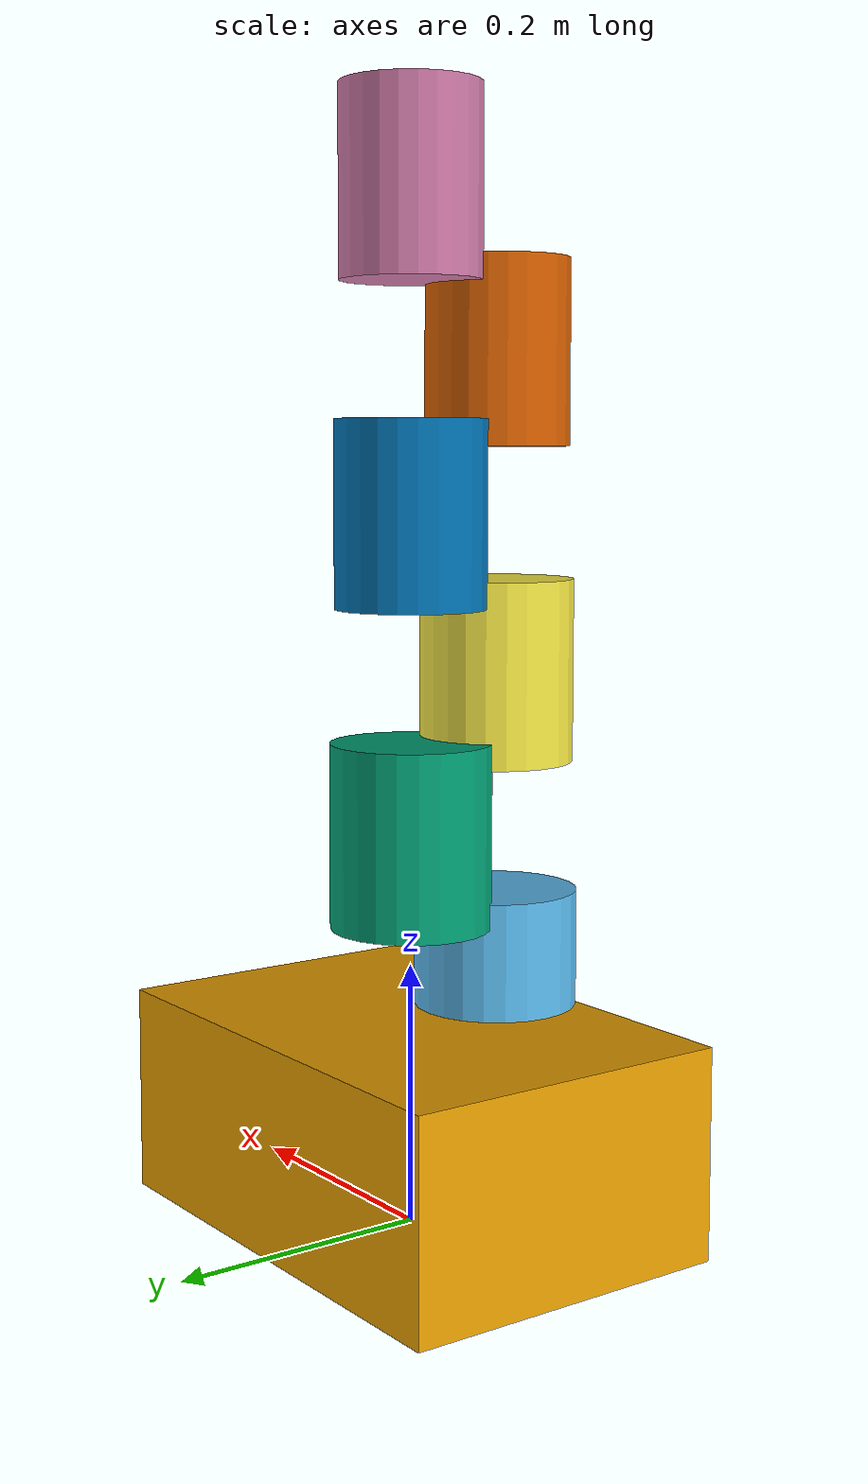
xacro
<?xml version="1.0" encoding="utf-8"?>
<!-- 现实基准原件: uuv_simulator (uuv_descriptions/urdf/common.urdf.xacro)                                          -->
<!-- 机型描述: UUV Simulator 工业水下机器人与深海防喷器阀门台（RexROV / 海底传感器 / BOP Panel）                                                                   -->
<!-- 运动学拓扑统计: 2 连杆 / 0 关节                                                    -->
<robot name="uuv_simulator">
  <link name="base_link">
    <inertial>
      <origin xyz="0 0 0.08" rpy="0 0 0"/>
      <mass value="16.40"/>
      <inertia ixx="0.185" ixy="0.0" ixz="0.0" iyy="0.240" iyz="0.0" izz="0.295"/>
    </inertial>
    <visual>
      <origin xyz="0 0 0.08" rpy="0 0 0"/>
      <geometry><box size="0.38 0.26 0.16"/></geometry>
    </visual>
    <collision>
      <origin xyz="0 0 0.08" rpy="0 0 0"/>
      <geometry><box size="0.38 0.26 0.16"/></geometry>
    </collision>
  </link>

  <link name="link_1">
    <inertial>
      <origin xyz="0 0 0.06" rpy="0 0 0"/>
      <mass value="3.200"/>
      <inertia ixx="0.014" ixy="0.0" ixz="0.0" iyy="0.014" iyz="0.0" izz="0.008"/>
    </inertial>
    <visual>
      <origin xyz="0 0 0.06" rpy="0 0 0"/>
      <geometry><cylinder radius="0.063" length="0.14"/></geometry>
    </visual>
  </link>
  <joint name="joint_1" type="revolute">
    <parent link="base_link"/>
    <child link="link_1"/>
    <origin xyz="0 -0.080 0.12" rpy="0 0 0"/>
    <axis xyz="1 0 0"/>
    <limit lower="-2.7925" upper="2.7925" effort="85.0" velocity="6.28"/>
  </joint>

  <link name="link_2">
    <inertial>
      <origin xyz="0 0 0.06" rpy="0 0 0"/>
      <mass value="2.263"/>
      <inertia ixx="0.014" ixy="0.0" ixz="0.0" iyy="0.014" iyz="0.0" izz="0.008"/>
    </inertial>
    <visual>
      <origin xyz="0 0 0.06" rpy="0 0 0"/>
      <geometry><cylinder radius="0.061" length="0.14"/></geometry>
    </visual>
  </link>
  <joint name="joint_2" type="revolute">
    <parent link="link_1"/>
    <child link="link_2"/>
    <origin xyz="0 0.080 0.12" rpy="0 0 0"/>
    <axis xyz="0 1 0"/>
    <limit lower="-2.7925" upper="2.7925" effort="85.0" velocity="6.28"/>
  </joint>

  <link name="link_3">
    <inertial>
      <origin xyz="0 0 0.06" rpy="0 0 0"/>
      <mass value="1.848"/>
      <inertia ixx="0.014" ixy="0.0" ixz="0.0" iyy="0.014" iyz="0.0" izz="0.008"/>
    </inertial>
    <visual>
      <origin xyz="0 0 0.06" rpy="0 0 0"/>
      <geometry><cylinder radius="0.059" length="0.14"/></geometry>
    </visual>
  </link>
  <joint name="joint_3" type="revolute">
    <parent link="link_2"/>
    <child link="link_3"/>
    <origin xyz="0 -0.080 0.12" rpy="0 0 0"/>
    <axis xyz="0 0 1"/>
    <limit lower="-2.7925" upper="2.7925" effort="85.0" velocity="6.28"/>
  </joint>

  <link name="link_4">
    <inertial>
      <origin xyz="0 0 0.06" rpy="0 0 0"/>
      <mass value="1.600"/>
      <inertia ixx="0.014" ixy="0.0" ixz="0.0" iyy="0.014" iyz="0.0" izz="0.008"/>
    </inertial>
    <visual>
      <origin xyz="0 0 0.06" rpy="0 0 0"/>
      <geometry><cylinder radius="0.057" length="0.14"/></geometry>
    </visual>
  </link>
  <joint name="joint_4" type="revolute">
    <parent link="link_3"/>
    <child link="link_4"/>
    <origin xyz="0 0.080 0.12" rpy="0 0 0"/>
    <axis xyz="0 1 0"/>
    <limit lower="-2.7925" upper="2.7925" effort="85.0" velocity="6.28"/>
  </joint>

  <link name="link_5">
    <inertial>
      <origin xyz="0 0 0.06" rpy="0 0 0"/>
      <mass value="1.431"/>
      <inertia ixx="0.014" ixy="0.0" ixz="0.0" iyy="0.014" iyz="0.0" izz="0.008"/>
    </inertial>
    <visual>
      <origin xyz="0 0 0.06" rpy="0 0 0"/>
      <geometry><cylinder radius="0.055" length="0.14"/></geometry>
    </visual>
  </link>
  <joint name="joint_5" type="revolute">
    <parent link="link_4"/>
    <child link="link_5"/>
    <origin xyz="0 -0.080 0.12" rpy="0 0 0"/>
    <axis xyz="1 0 0"/>
    <limit lower="-2.7925" upper="2.7925" effort="85.0" velocity="6.28"/>
  </joint>

  <link name="link_6">
    <inertial>
      <origin xyz="0 0 0.06" rpy="0 0 0"/>
      <mass value="1.306"/>
      <inertia ixx="0.014" ixy="0.0" ixz="0.0" iyy="0.014" iyz="0.0" izz="0.008"/>
    </inertial>
    <visual>
      <origin xyz="0 0 0.06" rpy="0 0 0"/>
      <geometry><cylinder radius="0.053" length="0.14"/></geometry>
    </visual>
  </link>
  <joint name="joint_6" type="revolute">
    <parent link="link_5"/>
    <child link="link_6"/>
    <origin xyz="0 0.080 0.12" rpy="0 0 0"/>
    <axis xyz="0 0 1"/>
    <limit lower="-2.7925" upper="2.7925" effort="85.0" velocity="6.28"/>
  </joint>
</robot>
